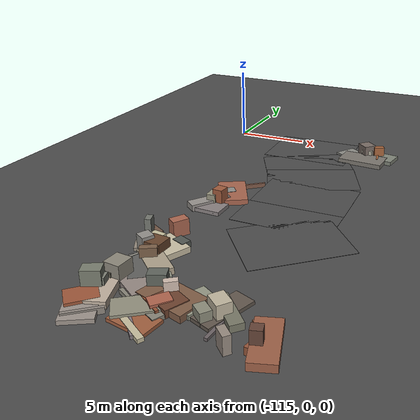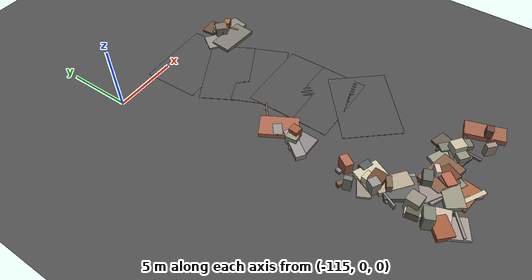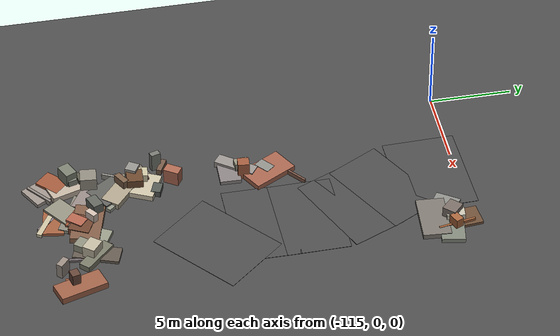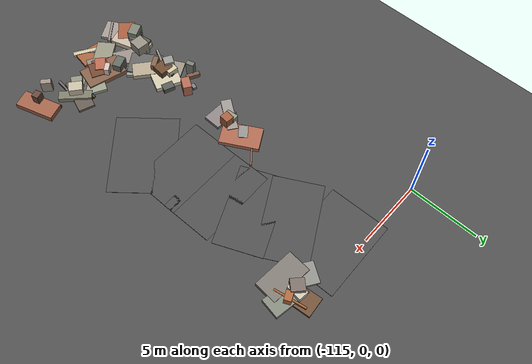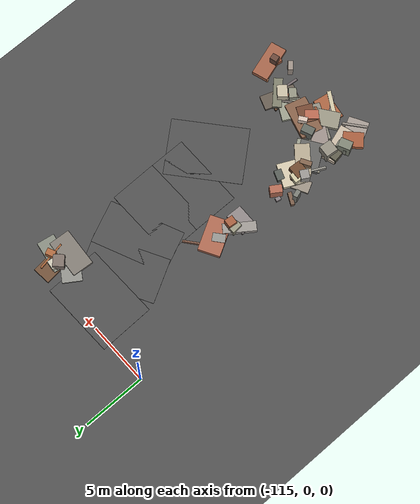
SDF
<sdf version="1.6">
 <world name="navitas_arena">
  <model name="ground_plane">
   <static>true</static>
   <link name="link">
    <collision name="collision">
     <geometry><plane><normal>0 0 1</normal><size>400 400</size></plane></geometry>
     <surface><friction><ode><mu>0.800</mu><mu2>0.800</mu2></ode></friction></surface>
    </collision>
    <visual name="visual">
     <cast_shadows>false</cast_shadows>
     <geometry><plane><normal>0 0 1</normal><size>400 400</size></plane></geometry>
     <material>
      <specular>0.04 0.04 0.04 1</specular>
      <script>
       <uri>file://media/materials/scripts/navitas_asphalt.material</uri>
       <name>Navitas/RealArenaAsphalt</name>
      </script>
     </material>
    </visual>
   </link>
  </model>
  <model name="road_kolay_1_5">
   <static>true</static>
   <pose>-104.956 -15.129 0.040 0 0 2.279</pose>
   <link name="link">
    <collision name="col"><geometry><box><size>4.502 6.000 0.020</size></box></geometry></collision>
    <visual name="vis">
     <geometry><box><size>4.502 6.000 0.020</size></box></geometry>
     <material>
      <specular>0.04 0.04 0.04 1</specular>
      <script>
       <uri>file://media/materials/scripts/navitas_asphalt.material</uri>
       <name>Navitas/RealArenaAsphalt</name>
      </script>
     </material>
    </visual>
   </link>
  </model>
  <model name="road_kolay_1_6">
   <static>true</static>
   <pose>-106.126 -12.340 0.040 0 0 1.570</pose>
   <link name="link">
    <collision name="col"><geometry><box><size>3.740 6.000 0.020</size></box></geometry></collision>
    <visual name="vis">
     <geometry><box><size>3.740 6.000 0.020</size></box></geometry>
     <material>
      <specular>0.04 0.04 0.04 1</specular>
      <script>
       <uri>file://media/materials/scripts/navitas_asphalt.material</uri>
       <name>Navitas/RealArenaAsphalt</name>
      </script>
     </material>
    </visual>
   </link>
  </model>
  <model name="road_kolay_1_7">
   <static>true</static>
   <pose>-106.145 -9.460 0.040 0 0 1.585</pose>
   <link name="link">
    <collision name="col"><geometry><box><size>3.820 6.000 0.020</size></box></geometry></collision>
    <visual name="vis">
     <geometry><box><size>3.820 6.000 0.020</size></box></geometry>
     <material>
      <specular>0.04 0.04 0.04 1</specular>
      <script>
       <uri>file://media/materials/scripts/navitas_asphalt.material</uri>
       <name>Navitas/RealArenaAsphalt</name>
      </script>
     </material>
    </visual>
   </link>
  </model>
  <model name="road_kolay_1_8">
   <static>true</static>
   <pose>-106.685 -6.833 0.040 0 0 1.989</pose>
   <link name="link">
    <collision name="col"><geometry><box><size>3.454 6.000 0.020</size></box></geometry></collision>
    <visual name="vis">
     <geometry><box><size>3.454 6.000 0.020</size></box></geometry>
     <material>
      <specular>0.04 0.04 0.04 1</specular>
      <script>
       <uri>file://media/materials/scripts/navitas_asphalt.material</uri>
       <name>Navitas/RealArenaAsphalt</name>
      </script>
     </material>
    </visual>
   </link>
  </model>
  <model name="road_kolay_1_9">
   <static>true</static>
   <pose>-107.845 -4.500 0.040 0 0 2.073</pose>
   <link name="link">
    <collision name="col"><geometry><box><size>3.562 6.000 0.020</size></box></geometry></collision>
    <visual name="vis">
     <geometry><box><size>3.562 6.000 0.020</size></box></geometry>
     <material>
      <specular>0.04 0.04 0.04 1</specular>
      <script>
       <uri>file://media/materials/scripts/navitas_asphalt.material</uri>
       <name>Navitas/RealArenaAsphalt</name>
      </script>
     </material>
    </visual>
   </link>
  </model>
  <model name="road_kolay_1_10">
   <static>true</static>
   <pose>-108.529 -1.583 0.040 0 0 1.596</pose>
   <link name="link">
    <collision name="col"><geometry><box><size>4.401 6.000 0.020</size></box></geometry></collision>
    <visual name="vis">
     <geometry><box><size>4.401 6.000 0.020</size></box></geometry>
     <material>
      <specular>0.04 0.04 0.04 1</specular>
      <script>
       <uri>file://media/materials/scripts/navitas_asphalt.material</uri>
       <name>Navitas/RealArenaAsphalt</name>
      </script>
     </material>
    </visual>
   </link>
  </model>
  <model name="deb_kolay_6">
   <static>true</static>
   <pose>-104.114 -1.815 0.000 0 0 0</pose>
   <link name="link">
    <collision name="col_0">
     <pose>-0.366 0.646 0.476 0.000 0.000 2.383</pose>
     <geometry><box><size>0.928 0.856 0.952</size></box></geometry>
    </collision>
    <visual name="vis_0">
     <pose>-0.366 0.646 0.476 0.000 0.000 2.383</pose>
     <geometry><box><size>0.928 0.856 0.952</size></box></geometry>
     <material>
      <ambient>0.45 0.40 0.37 1</ambient>
      <diffuse>0.48 0.43 0.40 1</diffuse>
      <specular>0.05 0.05 0.045 1</specular>
     </material>
    </visual>
    <collision name="col_1">
     <pose>0.163 0.191 0.134 0.000 0.000 2.814</pose>
     <geometry><box><size>0.394 0.396 0.268</size></box></geometry>
    </collision>
    <visual name="vis_1">
     <pose>0.163 0.191 0.134 0.000 0.000 2.814</pose>
     <geometry><box><size>0.394 0.396 0.268</size></box></geometry>
     <material>
      <ambient>0.45 0.35 0.24 1</ambient>
      <diffuse>0.49 0.38 0.26 1</diffuse>
      <specular>0.05 0.05 0.045 1</specular>
     </material>
    </visual>
    <collision name="col_2">
     <pose>0.502 0.676 0.436 0.000 0.000 3.576</pose>
     <geometry><box><size>0.691 0.494 0.872</size></box></geometry>
    </collision>
    <visual name="vis_2">
     <pose>0.502 0.676 0.436 0.000 0.000 3.576</pose>
     <geometry><box><size>0.691 0.494 0.872</size></box></geometry>
     <material>
      <ambient>0.61 0.37 0.22 1</ambient>
      <diffuse>0.66 0.40 0.24 1</diffuse>
      <specular>0.05 0.05 0.045 1</specular>
     </material>
    </visual>
    <collision name="col_3">
     <pose>-0.574 0.634 0.079 0.000 0.000 2.661</pose>
     <geometry><box><size>0.446 0.386 0.158</size></box></geometry>
    </collision>
    <visual name="vis_3">
     <pose>-0.574 0.634 0.079 0.000 0.000 2.661</pose>
     <geometry><box><size>0.446 0.386 0.158</size></box></geometry>
     <material>
      <ambient>0.44 0.31 0.23 1</ambient>
      <diffuse>0.47 0.33 0.24 1</diffuse>
      <specular>0.05 0.05 0.045 1</specular>
     </material>
    </visual>
   </link>
  </model>
  <model name="deb_kolay_7">
   <static>true</static>
   <pose>-104.295 -1.495 0.000 0 0 0</pose>
   <link name="link">
    <collision name="col_0">
     <pose>-0.162 -0.817 0.157 0.000 0.000 -0.072</pose>
     <geometry><box><size>3.071 1.691 0.314</size></box></geometry>
    </collision>
    <visual name="vis_0">
     <pose>-0.162 -0.817 0.157 0.000 0.000 -0.072</pose>
     <geometry><box><size>3.071 1.691 0.314</size></box></geometry>
     <material>
      <ambient>0.46 0.44 0.40 1</ambient>
      <diffuse>0.49 0.47 0.44 1</diffuse>
      <specular>0.05 0.05 0.045 1</specular>
     </material>
    </visual>
    <collision name="col_1">
     <pose>-0.041 0.465 0.314 0.000 0.000 1.462</pose>
     <geometry><box><size>1.101 0.726 0.627</size></box></geometry>
    </collision>
    <visual name="vis_1">
     <pose>-0.041 0.465 0.314 0.000 0.000 1.462</pose>
     <geometry><box><size>1.101 0.726 0.627</size></box></geometry>
     <material>
      <ambient>0.72 0.71 0.64 1</ambient>
      <diffuse>0.78 0.76 0.69 1</diffuse>
      <specular>0.05 0.05 0.045 1</specular>
     </material>
    </visual>
    <collision name="col_2">
     <pose>-0.231 0.709 0.146 0.000 0.000 0.795</pose>
     <geometry><box><size>0.396 0.385 0.291</size></box></geometry>
    </collision>
    <visual name="vis_2">
     <pose>-0.231 0.709 0.146 0.000 0.000 0.795</pose>
     <geometry><box><size>0.396 0.385 0.291</size></box></geometry>
     <material>
      <ambient>0.40 0.26 0.19 1</ambient>
      <diffuse>0.43 0.28 0.21 1</diffuse>
      <specular>0.05 0.05 0.045 1</specular>
     </material>
    </visual>
    <collision name="col_3">
     <pose>-0.874 -0.166 0.094 0.000 0.000 -0.587</pose>
     <geometry><box><size>2.462 1.514 0.188</size></box></geometry>
    </collision>
    <visual name="vis_3">
     <pose>-0.874 -0.166 0.094 0.000 0.000 -0.587</pose>
     <geometry><box><size>2.462 1.514 0.188</size></box></geometry>
     <material>
      <ambient>0.51 0.51 0.49 1</ambient>
      <diffuse>0.55 0.55 0.53 1</diffuse>
      <specular>0.05 0.05 0.045 1</specular>
     </material>
    </visual>
    <collision name="col_4">
     <pose>0.649 0.125 0.139 0.000 0.000 -0.169</pose>
     <geometry><box><size>2.597 1.405 0.277</size></box></geometry>
    </collision>
    <visual name="vis_4">
     <pose>0.649 0.125 0.139 0.000 0.000 -0.169</pose>
     <geometry><box><size>2.597 1.405 0.277</size></box></geometry>
     <material>
      <ambient>0.47 0.49 0.44 1</ambient>
      <diffuse>0.51 0.53 0.48 1</diffuse>
      <specular>0.05 0.05 0.045 1</specular>
     </material>
    </visual>
    <collision name="col_5">
     <pose>0.611 0.432 0.167 0.000 0.000 1.753</pose>
     <geometry><box><size>2.290 0.137 0.333</size></box></geometry>
    </collision>
    <visual name="vis_5">
     <pose>0.611 0.432 0.167 0.000 0.000 1.753</pose>
     <geometry><box><size>2.290 0.137 0.333</size></box></geometry>
     <material>
      <ambient>0.58 0.35 0.21 1</ambient>
      <diffuse>0.63 0.38 0.22 1</diffuse>
      <specular>0.05 0.05 0.045 1</specular>
     </material>
    </visual>
    <collision name="col_6">
     <pose>0.080 0.646 0.085 0.000 0.000 1.666</pose>
     <geometry><box><size>2.610 1.439 0.171</size></box></geometry>
    </collision>
    <visual name="vis_6">
     <pose>0.080 0.646 0.085 0.000 0.000 1.666</pose>
     <geometry><box><size>2.610 1.439 0.171</size></box></geometry>
     <material>
      <ambient>0.40 0.29 0.21 1</ambient>
      <diffuse>0.43 0.31 0.22 1</diffuse>
      <specular>0.05 0.05 0.045 1</specular>
     </material>
    </visual>
   </link>
  </model>
  <model name="deb_kolay_13">
   <static>true</static>
   <pose>-108.698 -22.601 0.000 0 0 0</pose>
   <link name="link">
    <collision name="col_0">
     <pose>0.086 -0.724 0.163 0.000 0.000 0.630</pose>
     <geometry><box><size>2.988 1.344 0.325</size></box></geometry>
    </collision>
    <visual name="vis_0">
     <pose>0.086 -0.724 0.163 0.000 0.000 0.630</pose>
     <geometry><box><size>2.988 1.344 0.325</size></box></geometry>
     <material>
      <ambient>0.54 0.53 0.47 1</ambient>
      <diffuse>0.58 0.57 0.50 1</diffuse>
      <specular>0.05 0.05 0.045 1</specular>
     </material>
    </visual>
    <collision name="col_1">
     <pose>-0.220 0.833 0.481 0.000 0.000 0.382</pose>
     <geometry><box><size>0.945 0.642 0.962</size></box></geometry>
    </collision>
    <visual name="vis_1">
     <pose>-0.220 0.833 0.481 0.000 0.000 0.382</pose>
     <geometry><box><size>0.945 0.642 0.962</size></box></geometry>
     <material>
      <ambient>0.35 0.37 0.34 1</ambient>
      <diffuse>0.38 0.40 0.37 1</diffuse>
      <specular>0.05 0.05 0.045 1</specular>
     </material>
    </visual>
    <collision name="col_2">
     <pose>0.636 -0.362 0.240 0.000 0.000 0.856</pose>
     <geometry><box><size>1.071 0.747 0.480</size></box></geometry>
    </collision>
    <visual name="vis_2">
     <pose>0.636 -0.362 0.240 0.000 0.000 0.856</pose>
     <geometry><box><size>1.071 0.747 0.480</size></box></geometry>
     <material>
      <ambient>0.65 0.37 0.29 1</ambient>
      <diffuse>0.70 0.40 0.31 1</diffuse>
      <specular>0.05 0.05 0.045 1</specular>
     </material>
    </visual>
    <collision name="col_3">
     <pose>0.677 0.528 0.462 0.000 0.000 0.632</pose>
     <geometry><box><size>0.689 0.361 0.923</size></box></geometry>
    </collision>
    <visual name="vis_3">
     <pose>0.677 0.528 0.462 0.000 0.000 0.632</pose>
     <geometry><box><size>0.689 0.361 0.923</size></box></geometry>
     <material>
      <ambient>0.76 0.69 0.64 1</ambient>
      <diffuse>0.82 0.74 0.69 1</diffuse>
      <specular>0.05 0.05 0.045 1</specular>
     </material>
    </visual>
    <collision name="col_4">
     <pose>0.324 -0.351 0.169 0.000 0.000 1.983</pose>
     <geometry><box><size>0.403 0.341 0.338</size></box></geometry>
    </collision>
    <visual name="vis_4">
     <pose>0.324 -0.351 0.169 0.000 0.000 1.983</pose>
     <geometry><box><size>0.403 0.341 0.338</size></box></geometry>
     <material>
      <ambient>0.40 0.24 0.20 1</ambient>
      <diffuse>0.43 0.26 0.21 1</diffuse>
      <specular>0.05 0.05 0.045 1</specular>
     </material>
    </visual>
    <collision name="col_5">
     <pose>-0.785 0.219 0.142 0.000 0.000 1.299</pose>
     <geometry><box><size>0.363 0.346 0.283</size></box></geometry>
    </collision>
    <visual name="vis_5">
     <pose>-0.785 0.219 0.142 0.000 0.000 1.299</pose>
     <geometry><box><size>0.363 0.346 0.283</size></box></geometry>
     <material>
      <ambient>0.60 0.34 0.22 1</ambient>
      <diffuse>0.65 0.37 0.24 1</diffuse>
      <specular>0.05 0.05 0.045 1</specular>
     </material>
    </visual>
   </link>
  </model>
  <model name="deb_kolay_37">
   <static>true</static>
   <pose>-108.775 -23.784 0.000 0 0 0</pose>
   <link name="link">
    <collision name="col_0">
     <pose>0.159 -0.707 0.096 0.000 0.000 2.370</pose>
     <geometry><box><size>2.111 0.297 0.191</size></box></geometry>
    </collision>
    <visual name="vis_0">
     <pose>0.159 -0.707 0.096 0.000 0.000 2.370</pose>
     <geometry><box><size>2.111 0.297 0.191</size></box></geometry>
     <material>
      <ambient>0.49 0.44 0.46 1</ambient>
      <diffuse>0.53 0.48 0.50 1</diffuse>
      <specular>0.05 0.05 0.045 1</specular>
     </material>
    </visual>
    <collision name="col_1">
     <pose>-0.088 0.690 0.114 0.000 0.000 2.689</pose>
     <geometry><box><size>3.035 0.825 0.228</size></box></geometry>
    </collision>
    <visual name="vis_1">
     <pose>-0.088 0.690 0.114 0.000 0.000 2.689</pose>
     <geometry><box><size>3.035 0.825 0.228</size></box></geometry>
     <material>
      <ambient>0.50 0.49 0.45 1</ambient>
      <diffuse>0.54 0.53 0.48 1</diffuse>
      <specular>0.05 0.05 0.045 1</specular>
     </material>
    </visual>
    <collision name="col_2">
     <pose>0.564 -1.070 0.104 0.000 0.000 2.611</pose>
     <geometry><box><size>1.753 0.318 0.207</size></box></geometry>
    </collision>
    <visual name="vis_2">
     <pose>0.564 -1.070 0.104 0.000 0.000 2.611</pose>
     <geometry><box><size>1.753 0.318 0.207</size></box></geometry>
     <material>
      <ambient>0.73 0.69 0.58 1</ambient>
      <diffuse>0.79 0.75 0.63 1</diffuse>
      <specular>0.05 0.05 0.045 1</specular>
     </material>
    </visual>
    <collision name="col_3">
     <pose>0.404 0.517 0.176 0.000 0.000 2.612</pose>
     <geometry><box><size>1.393 0.173 0.351</size></box></geometry>
    </collision>
    <visual name="vis_3">
     <pose>0.404 0.517 0.176 0.000 0.000 2.612</pose>
     <geometry><box><size>1.393 0.173 0.351</size></box></geometry>
     <material>
      <ambient>0.55 0.31 0.19 1</ambient>
      <diffuse>0.59 0.33 0.21 1</diffuse>
      <specular>0.05 0.05 0.045 1</specular>
     </material>
    </visual>
    <collision name="col_4">
     <pose>0.300 -0.511 0.089 0.000 0.000 2.977</pose>
     <geometry><box><size>2.151 1.284 0.179</size></box></geometry>
    </collision>
    <visual name="vis_4">
     <pose>0.300 -0.511 0.089 0.000 0.000 2.977</pose>
     <geometry><box><size>2.151 1.284 0.179</size></box></geometry>
     <material>
      <ambient>0.59 0.35 0.24 1</ambient>
      <diffuse>0.64 0.38 0.25 1</diffuse>
      <specular>0.05 0.05 0.045 1</specular>
     </material>
    </visual>
   </link>
  </model>
  <model name="deb_kolay_74">
   <static>true</static>
   <pose>-105.830 -22.360 0.000 0 0 0</pose>
   <link name="link">
    <collision name="col_0">
     <pose>-0.238 0.664 0.093 0.000 0.000 0.663</pose>
     <geometry><box><size>2.375 0.278 0.185</size></box></geometry>
    </collision>
    <visual name="vis_0">
     <pose>-0.238 0.664 0.093 0.000 0.000 0.663</pose>
     <geometry><box><size>2.375 0.278 0.185</size></box></geometry>
     <material>
      <ambient>0.34 0.33 0.31 1</ambient>
      <diffuse>0.37 0.36 0.33 1</diffuse>
      <specular>0.05 0.05 0.045 1</specular>
     </material>
    </visual>
    <collision name="col_1">
     <pose>0.500 0.206 0.096 0.000 0.000 1.226</pose>
     <geometry><box><size>2.761 1.187 0.191</size></box></geometry>
    </collision>
    <visual name="vis_1">
     <pose>0.500 0.206 0.096 0.000 0.000 1.226</pose>
     <geometry><box><size>2.761 1.187 0.191</size></box></geometry>
     <material>
      <ambient>0.36 0.33 0.29 1</ambient>
      <diffuse>0.39 0.35 0.31 1</diffuse>
      <specular>0.05 0.05 0.045 1</specular>
     </material>
    </visual>
    <collision name="col_2">
     <pose>-0.215 0.018 0.146 0.000 0.000 0.668</pose>
     <geometry><box><size>1.291 0.213 0.293</size></box></geometry>
    </collision>
    <visual name="vis_2">
     <pose>-0.215 0.018 0.146 0.000 0.000 0.668</pose>
     <geometry><box><size>1.291 0.213 0.293</size></box></geometry>
     <material>
      <ambient>0.35 0.32 0.31 1</ambient>
      <diffuse>0.38 0.35 0.33 1</diffuse>
      <specular>0.05 0.05 0.045 1</specular>
     </material>
    </visual>
    <collision name="col_3">
     <pose>-0.028 -0.498 0.172 0.000 0.000 1.151</pose>
     <geometry><box><size>0.456 0.427 0.344</size></box></geometry>
    </collision>
    <visual name="vis_3">
     <pose>-0.028 -0.498 0.172 0.000 0.000 1.151</pose>
     <geometry><box><size>0.456 0.427 0.344</size></box></geometry>
     <material>
      <ambient>0.66 0.40 0.30 1</ambient>
      <diffuse>0.71 0.43 0.32 1</diffuse>
      <specular>0.05 0.05 0.045 1</specular>
     </material>
    </visual>
    <collision name="col_4">
     <pose>0.424 0.266 0.136 0.000 0.000 -0.114</pose>
     <geometry><box><size>0.494 0.264 0.272</size></box></geometry>
    </collision>
    <visual name="vis_4">
     <pose>0.424 0.266 0.136 0.000 0.000 -0.114</pose>
     <geometry><box><size>0.494 0.264 0.272</size></box></geometry>
     <material>
      <ambient>0.56 0.54 0.51 1</ambient>
      <diffuse>0.61 0.59 0.55 1</diffuse>
      <specular>0.05 0.05 0.045 1</specular>
     </material>
    </visual>
    <collision name="col_5">
     <pose>-0.046 0.381 0.085 0.000 0.000 1.602</pose>
     <geometry><box><size>1.546 0.174 0.170</size></box></geometry>
    </collision>
    <visual name="vis_5">
     <pose>-0.046 0.381 0.085 0.000 0.000 1.602</pose>
     <geometry><box><size>1.546 0.174 0.170</size></box></geometry>
     <material>
      <ambient>0.39 0.28 0.20 1</ambient>
      <diffuse>0.42 0.30 0.21 1</diffuse>
      <specular>0.05 0.05 0.045 1</specular>
     </material>
    </visual>
    <collision name="col_6">
     <pose>-0.040 -0.643 0.340 0.000 0.000 0.912</pose>
     <geometry><box><size>0.597 0.799 0.679</size></box></geometry>
    </collision>
    <visual name="vis_6">
     <pose>-0.040 -0.643 0.340 0.000 0.000 0.912</pose>
     <geometry><box><size>0.597 0.799 0.679</size></box></geometry>
     <material>
      <ambient>0.52 0.51 0.45 1</ambient>
      <diffuse>0.56 0.56 0.49 1</diffuse>
      <specular>0.05 0.05 0.045 1</specular>
     </material>
    </visual>
   </link>
  </model>
  <model name="deb_kolay_88">
   <static>true</static>
   <pose>-110.507 -13.376 0.000 0 0 0</pose>
   <link name="link">
    <collision name="col_0">
     <pose>-0.468 -0.263 0.062 0.000 0.000 -0.376</pose>
     <geometry><box><size>1.690 0.262 0.124</size></box></geometry>
    </collision>
    <visual name="vis_0">
     <pose>-0.468 -0.263 0.062 0.000 0.000 -0.376</pose>
     <geometry><box><size>1.690 0.262 0.124</size></box></geometry>
     <material>
      <ambient>0.52 0.54 0.45 1</ambient>
      <diffuse>0.56 0.58 0.49 1</diffuse>
      <specular>0.05 0.05 0.045 1</specular>
     </material>
    </visual>
    <collision name="col_1">
     <pose>-0.481 0.760 0.373 0.000 0.000 1.662</pose>
     <geometry><box><size>0.854 0.548 0.746</size></box></geometry>
    </collision>
    <visual name="vis_1">
     <pose>-0.481 0.760 0.373 0.000 0.000 1.662</pose>
     <geometry><box><size>0.854 0.548 0.746</size></box></geometry>
     <material>
      <ambient>0.55 0.54 0.47 1</ambient>
      <diffuse>0.59 0.58 0.50 1</diffuse>
      <specular>0.05 0.05 0.045 1</specular>
     </material>
    </visual>
    <collision name="col_2">
     <pose>-0.043 0.814 0.538 0.000 0.000 -0.100</pose>
     <geometry><box><size>0.645 0.692 1.076</size></box></geometry>
    </collision>
    <visual name="vis_2">
     <pose>-0.043 0.814 0.538 0.000 0.000 -0.100</pose>
     <geometry><box><size>0.645 0.692 1.076</size></box></geometry>
     <material>
      <ambient>0.59 0.34 0.22 1</ambient>
      <diffuse>0.63 0.36 0.24 1</diffuse>
      <specular>0.05 0.05 0.045 1</specular>
     </material>
    </visual>
    <collision name="col_3">
     <pose>-0.649 0.474 0.199 0.000 0.000 0.944</pose>
     <geometry><box><size>2.539 0.766 0.397</size></box></geometry>
    </collision>
    <visual name="vis_3">
     <pose>-0.649 0.474 0.199 0.000 0.000 0.944</pose>
     <geometry><box><size>2.539 0.766 0.397</size></box></geometry>
     <material>
      <ambient>0.56 0.54 0.52 1</ambient>
      <diffuse>0.60 0.58 0.56 1</diffuse>
      <specular>0.05 0.05 0.045 1</specular>
     </material>
    </visual>
    <collision name="col_4">
     <pose>-0.283 -0.031 0.120 0.000 0.000 -0.026</pose>
     <geometry><box><size>1.808 1.284 0.240</size></box></geometry>
    </collision>
    <visual name="vis_4">
     <pose>-0.283 -0.031 0.120 0.000 0.000 -0.026</pose>
     <geometry><box><size>1.808 1.284 0.240</size></box></geometry>
     <material>
      <ambient>0.50 0.47 0.48 1</ambient>
      <diffuse>0.54 0.51 0.51 1</diffuse>
      <specular>0.05 0.05 0.045 1</specular>
     </material>
    </visual>
   </link>
  </model>
  <model name="deb_kolay_93">
   <static>true</static>
   <pose>-110.550 -21.634 0.000 0 0 0</pose>
   <link name="link">
    <collision name="col_0">
     <pose>0.704 -0.765 0.080 0.000 0.000 2.467</pose>
     <geometry><box><size>2.007 0.272 0.159</size></box></geometry>
    </collision>
    <visual name="vis_0">
     <pose>0.704 -0.765 0.080 0.000 0.000 2.467</pose>
     <geometry><box><size>2.007 0.272 0.159</size></box></geometry>
     <material>
      <ambient>0.61 0.61 0.57 1</ambient>
      <diffuse>0.66 0.66 0.62 1</diffuse>
      <specular>0.05 0.05 0.045 1</specular>
     </material>
    </visual>
    <collision name="col_1">
     <pose>-0.714 -0.006 0.134 0.000 0.000 3.982</pose>
     <geometry><box><size>0.199 0.317 0.267</size></box></geometry>
    </collision>
    <visual name="vis_1">
     <pose>-0.714 -0.006 0.134 0.000 0.000 3.982</pose>
     <geometry><box><size>0.199 0.317 0.267</size></box></geometry>
     <material>
      <ambient>0.63 0.60 0.55 1</ambient>
      <diffuse>0.68 0.65 0.59 1</diffuse>
      <specular>0.05 0.05 0.045 1</specular>
     </material>
    </visual>
    <collision name="col_2">
     <pose>0.617 -0.433 0.167 0.000 0.000 2.589</pose>
     <geometry><box><size>1.960 1.280 0.334</size></box></geometry>
    </collision>
    <visual name="vis_2">
     <pose>0.617 -0.433 0.167 0.000 0.000 2.589</pose>
     <geometry><box><size>1.960 1.280 0.334</size></box></geometry>
     <material>
      <ambient>0.55 0.50 0.48 1</ambient>
      <diffuse>0.59 0.54 0.52 1</diffuse>
      <specular>0.05 0.05 0.045 1</specular>
     </material>
    </visual>
    <collision name="col_3">
     <pose>-0.533 -0.209 0.563 0.000 0.000 3.046</pose>
     <geometry><box><size>0.951 0.983 1.126</size></box></geometry>
    </collision>
    <visual name="vis_3">
     <pose>-0.533 -0.209 0.563 0.000 0.000 3.046</pose>
     <geometry><box><size>0.951 0.983 1.126</size></box></geometry>
     <material>
      <ambient>0.52 0.50 0.46 1</ambient>
      <diffuse>0.56 0.54 0.49 1</diffuse>
      <specular>0.05 0.05 0.045 1</specular>
     </material>
    </visual>
    <collision name="col_4">
     <pose>-1.055 -0.402 0.314 0.000 0.000 3.304</pose>
     <geometry><box><size>0.785 0.841 0.628</size></box></geometry>
    </collision>
    <visual name="vis_4">
     <pose>-1.055 -0.402 0.314 0.000 0.000 3.304</pose>
     <geometry><box><size>0.785 0.841 0.628</size></box></geometry>
     <material>
      <ambient>0.33 0.32 0.27 1</ambient>
      <diffuse>0.36 0.35 0.29 1</diffuse>
      <specular>0.05 0.05 0.045 1</specular>
     </material>
    </visual>
   </link>
  </model>
  <model name="deb_kolay_121">
   <static>true</static>
   <pose>-105.128 -22.398 0.000 0 0 0</pose>
   <link name="link">
    <collision name="col_0">
     <pose>0.141 -0.663 0.076 0.000 0.000 1.472</pose>
     <geometry><box><size>2.201 0.181 0.152</size></box></geometry>
    </collision>
    <visual name="vis_0">
     <pose>0.141 -0.663 0.076 0.000 0.000 1.472</pose>
     <geometry><box><size>2.201 0.181 0.152</size></box></geometry>
     <material>
      <ambient>0.40 0.36 0.37 1</ambient>
      <diffuse>0.43 0.39 0.40 1</diffuse>
      <specular>0.05 0.05 0.045 1</specular>
     </material>
    </visual>
    <collision name="col_1">
     <pose>-0.710 -0.121 0.160 0.000 0.000 0.522</pose>
     <geometry><box><size>0.221 0.353 0.320</size></box></geometry>
    </collision>
    <visual name="vis_1">
     <pose>-0.710 -0.121 0.160 0.000 0.000 0.522</pose>
     <geometry><box><size>0.221 0.353 0.320</size></box></geometry>
     <material>
      <ambient>0.56 0.54 0.49 1</ambient>
      <diffuse>0.60 0.58 0.53 1</diffuse>
      <specular>0.05 0.05 0.045 1</specular>
     </material>
    </visual>
    <collision name="col_2">
     <pose>-0.186 -0.031 0.469 0.000 0.000 0.897</pose>
     <geometry><box><size>0.789 0.979 0.938</size></box></geometry>
    </collision>
    <visual name="vis_2">
     <pose>-0.186 -0.031 0.469 0.000 0.000 0.897</pose>
     <geometry><box><size>0.789 0.979 0.938</size></box></geometry>
     <material>
      <ambient>0.71 0.67 0.58 1</ambient>
      <diffuse>0.76 0.72 0.63 1</diffuse>
      <specular>0.05 0.05 0.045 1</specular>
     </material>
    </visual>
    <collision name="col_3">
     <pose>0.110 0.149 0.186 0.000 0.000 2.357</pose>
     <geometry><box><size>2.377 0.699 0.372</size></box></geometry>
    </collision>
    <visual name="vis_3">
     <pose>0.110 0.149 0.186 0.000 0.000 2.357</pose>
     <geometry><box><size>2.377 0.699 0.372</size></box></geometry>
     <material>
      <ambient>0.44 0.44 0.38 1</ambient>
      <diffuse>0.48 0.48 0.41 1</diffuse>
      <specular>0.05 0.05 0.045 1</specular>
     </material>
    </visual>
   </link>
  </model>
  <model name="deb_kolay_134">
   <static>true</static>
   <pose>-110.647 -10.263 0.000 0 0 0</pose>
   <link name="link">
    <collision name="col_0">
     <pose>0.917 0.698 0.139 0.000 0.000 0.684</pose>
     <geometry><box><size>1.540 0.133 0.278</size></box></geometry>
    </collision>
    <visual name="vis_0">
     <pose>0.917 0.698 0.139 0.000 0.000 0.684</pose>
     <geometry><box><size>1.540 0.133 0.278</size></box></geometry>
     <material>
      <ambient>0.46 0.33 0.26 1</ambient>
      <diffuse>0.50 0.35 0.28 1</diffuse>
      <specular>0.05 0.05 0.045 1</specular>
     </material>
    </visual>
    <collision name="col_1">
     <pose>0.133 -0.838 0.148 0.000 0.000 1.729</pose>
     <geometry><box><size>2.313 0.184 0.296</size></box></geometry>
    </collision>
    <visual name="vis_1">
     <pose>0.133 -0.838 0.148 0.000 0.000 1.729</pose>
     <geometry><box><size>2.313 0.184 0.296</size></box></geometry>
     <material>
      <ambient>0.73 0.67 0.59 1</ambient>
      <diffuse>0.79 0.72 0.64 1</diffuse>
      <specular>0.05 0.05 0.045 1</specular>
     </material>
    </visual>
    <collision name="col_2">
     <pose>0.203 -0.867 0.167 0.000 0.000 2.082</pose>
     <geometry><box><size>2.846 1.742 0.335</size></box></geometry>
    </collision>
    <visual name="vis_2">
     <pose>0.203 -0.867 0.167 0.000 0.000 2.082</pose>
     <geometry><box><size>2.846 1.742 0.335</size></box></geometry>
     <material>
      <ambient>0.61 0.37 0.28 1</ambient>
      <diffuse>0.66 0.40 0.31 1</diffuse>
      <specular>0.05 0.05 0.045 1</specular>
     </material>
    </visual>
    <collision name="col_3">
     <pose>-0.113 -0.963 0.178 0.000 0.000 0.689</pose>
     <geometry><box><size>0.998 0.668 0.355</size></box></geometry>
    </collision>
    <visual name="vis_3">
     <pose>-0.113 -0.963 0.178 0.000 0.000 0.689</pose>
     <geometry><box><size>0.998 0.668 0.355</size></box></geometry>
     <material>
      <ambient>0.52 0.51 0.50 1</ambient>
      <diffuse>0.56 0.56 0.54 1</diffuse>
      <specular>0.05 0.05 0.045 1</specular>
     </material>
    </visual>
   </link>
  </model>
  <model name="deb_kolay_142">
   <static>true</static>
   <pose>-110.854 -18.076 0.000 0 0 0</pose>
   <link name="link">
    <collision name="col_0">
     <pose>0.819 0.195 0.187 0.000 0.000 -0.367</pose>
     <geometry><box><size>0.829 0.567 0.373</size></box></geometry>
    </collision>
    <visual name="vis_0">
     <pose>0.819 0.195 0.187 0.000 0.000 -0.367</pose>
     <geometry><box><size>0.829 0.567 0.373</size></box></geometry>
     <material>
      <ambient>0.30 0.32 0.31 1</ambient>
      <diffuse>0.33 0.35 0.33 1</diffuse>
      <specular>0.05 0.05 0.045 1</specular>
     </material>
    </visual>
    <collision name="col_1">
     <pose>-0.112 -0.564 0.156 0.000 0.000 1.294</pose>
     <geometry><box><size>0.331 0.216 0.312</size></box></geometry>
    </collision>
    <visual name="vis_1">
     <pose>-0.112 -0.564 0.156 0.000 0.000 1.294</pose>
     <geometry><box><size>0.331 0.216 0.312</size></box></geometry>
     <material>
      <ambient>0.40 0.38 0.36 1</ambient>
      <diffuse>0.43 0.41 0.39 1</diffuse>
      <specular>0.05 0.05 0.045 1</specular>
     </material>
    </visual>
    <collision name="col_2">
     <pose>-0.245 -0.626 0.419 0.000 0.000 -0.130</pose>
     <geometry><box><size>0.760 0.856 0.838</size></box></geometry>
    </collision>
    <visual name="vis_2">
     <pose>-0.245 -0.626 0.419 0.000 0.000 -0.130</pose>
     <geometry><box><size>0.760 0.856 0.838</size></box></geometry>
     <material>
      <ambient>0.73 0.70 0.58 1</ambient>
      <diffuse>0.79 0.76 0.63 1</diffuse>
      <specular>0.05 0.05 0.045 1</specular>
     </material>
    </visual>
    <collision name="col_3">
     <pose>-0.601 -0.445 0.085 0.000 0.000 0.486</pose>
     <geometry><box><size>1.859 0.941 0.171</size></box></geometry>
    </collision>
    <visual name="vis_3">
     <pose>-0.601 -0.445 0.085 0.000 0.000 0.486</pose>
     <geometry><box><size>1.859 0.941 0.171</size></box></geometry>
     <material>
      <ambient>0.55 0.51 0.46 1</ambient>
      <diffuse>0.59 0.55 0.50 1</diffuse>
      <specular>0.05 0.05 0.045 1</specular>
     </material>
    </visual>
    <collision name="col_4">
     <pose>-0.159 -0.645 0.243 0.000 0.000 1.720</pose>
     <geometry><box><size>0.907 0.514 0.487</size></box></geometry>
    </collision>
    <visual name="vis_4">
     <pose>-0.159 -0.645 0.243 0.000 0.000 1.720</pose>
     <geometry><box><size>0.907 0.514 0.487</size></box></geometry>
     <material>
      <ambient>0.40 0.27 0.24 1</ambient>
      <diffuse>0.43 0.29 0.26 1</diffuse>
      <specular>0.05 0.05 0.045 1</specular>
     </material>
    </visual>
    <collision name="col_5">
     <pose>0.344 -0.531 0.172 0.000 0.000 -0.445</pose>
     <geometry><box><size>1.944 1.692 0.345</size></box></geometry>
    </collision>
    <visual name="vis_5">
     <pose>0.344 -0.531 0.172 0.000 0.000 -0.445</pose>
     <geometry><box><size>1.944 1.692 0.345</size></box></geometry>
     <material>
      <ambient>0.74 0.71 0.62 1</ambient>
      <diffuse>0.80 0.76 0.66 1</diffuse>
      <specular>0.05 0.05 0.045 1</specular>
     </material>
    </visual>
   </link>
  </model>
  <model name="deb_kolay_149">
   <static>true</static>
   <pose>-111.290 -17.185 0.000 0 0 0</pose>
   <link name="link">
    <collision name="col_0">
     <pose>-0.706 -0.113 0.171 0.000 0.000 -0.478</pose>
     <geometry><box><size>1.016 0.308 0.341</size></box></geometry>
    </collision>
    <visual name="vis_0">
     <pose>-0.706 -0.113 0.171 0.000 0.000 -0.478</pose>
     <geometry><box><size>1.016 0.308 0.341</size></box></geometry>
     <material>
      <ambient>0.43 0.32 0.25 1</ambient>
      <diffuse>0.46 0.35 0.28 1</diffuse>
      <specular>0.05 0.05 0.045 1</specular>
     </material>
    </visual>
    <collision name="col_1">
     <pose>-0.892 -0.466 0.585 0.000 0.000 1.878</pose>
     <geometry><box><size>0.589 0.359 1.171</size></box></geometry>
    </collision>
    <visual name="vis_1">
     <pose>-0.892 -0.466 0.585 0.000 0.000 1.878</pose>
     <geometry><box><size>0.589 0.359 1.171</size></box></geometry>
     <material>
      <ambient>0.42 0.43 0.41 1</ambient>
      <diffuse>0.46 0.47 0.44 1</diffuse>
      <specular>0.05 0.05 0.045 1</specular>
     </material>
    </visual>
    <collision name="col_2">
     <pose>0.446 0.394 0.478 0.000 0.000 0.988</pose>
     <geometry><box><size>0.946 0.622 0.957</size></box></geometry>
    </collision>
    <visual name="vis_2">
     <pose>0.446 0.394 0.478 0.000 0.000 0.988</pose>
     <geometry><box><size>0.946 0.622 0.957</size></box></geometry>
     <material>
      <ambient>0.63 0.38 0.29 1</ambient>
      <diffuse>0.68 0.41 0.32 1</diffuse>
      <specular>0.05 0.05 0.045 1</specular>
     </material>
    </visual>
    <collision name="col_3">
     <pose>-0.054 0.608 0.117 0.000 0.000 -0.262</pose>
     <geometry><box><size>0.287 0.403 0.234</size></box></geometry>
    </collision>
    <visual name="vis_3">
     <pose>-0.054 0.608 0.117 0.000 0.000 -0.262</pose>
     <geometry><box><size>0.287 0.403 0.234</size></box></geometry>
     <material>
      <ambient>0.46 0.43 0.44 1</ambient>
      <diffuse>0.50 0.47 0.48 1</diffuse>
      <specular>0.05 0.05 0.045 1</specular>
     </material>
    </visual>
   </link>
  </model>
  <model name="deb_kolay_150">
   <static>true</static>
   <pose>-103.566 -23.785 0.000 0 0 0</pose>
   <link name="link">
    <collision name="col_0">
     <pose>0.757 -0.243 0.203 0.000 0.000 1.395</pose>
     <geometry><box><size>0.653 0.888 0.406</size></box></geometry>
    </collision>
    <visual name="vis_0">
     <pose>0.757 -0.243 0.203 0.000 0.000 1.395</pose>
     <geometry><box><size>0.653 0.888 0.406</size></box></geometry>
     <material>
      <ambient>0.54 0.32 0.21 1</ambient>
      <diffuse>0.59 0.34 0.23 1</diffuse>
      <specular>0.05 0.05 0.045 1</specular>
     </material>
    </visual>
    <collision name="col_1">
     <pose>0.522 0.559 0.120 0.000 0.000 2.245</pose>
     <geometry><box><size>2.272 0.146 0.240</size></box></geometry>
    </collision>
    <visual name="vis_1">
     <pose>0.522 0.559 0.120 0.000 0.000 2.245</pose>
     <geometry><box><size>2.272 0.146 0.240</size></box></geometry>
     <material>
      <ambient>0.63 0.42 0.28 1</ambient>
      <diffuse>0.68 0.45 0.31 1</diffuse>
      <specular>0.05 0.05 0.045 1</specular>
     </material>
    </visual>
    <collision name="col_2">
     <pose>-0.594 -0.532 0.472 0.000 0.000 2.415</pose>
     <geometry><box><size>0.759 0.391 0.944</size></box></geometry>
    </collision>
    <visual name="vis_2">
     <pose>-0.594 -0.532 0.472 0.000 0.000 2.415</pose>
     <geometry><box><size>0.759 0.391 0.944</size></box></geometry>
     <material>
      <ambient>0.56 0.51 0.47 1</ambient>
      <diffuse>0.60 0.55 0.51 1</diffuse>
      <specular>0.05 0.05 0.045 1</specular>
     </material>
    </visual>
    <collision name="col_3">
     <pose>0.612 0.007 0.556 0.000 0.000 1.844</pose>
     <geometry><box><size>0.502 0.567 1.113</size></box></geometry>
    </collision>
    <visual name="vis_3">
     <pose>0.612 0.007 0.556 0.000 0.000 1.844</pose>
     <geometry><box><size>0.502 0.567 1.113</size></box></geometry>
     <material>
      <ambient>0.37 0.25 0.21 1</ambient>
      <diffuse>0.40 0.27 0.22 1</diffuse>
      <specular>0.05 0.05 0.045 1</specular>
     </material>
    </visual>
    <collision name="col_4">
     <pose>0.894 0.276 0.204 0.000 0.000 1.877</pose>
     <geometry><box><size>2.898 1.286 0.409</size></box></geometry>
    </collision>
    <visual name="vis_4">
     <pose>0.894 0.276 0.204 0.000 0.000 1.877</pose>
     <geometry><box><size>2.898 1.286 0.409</size></box></geometry>
     <material>
      <ambient>0.58 0.35 0.26 1</ambient>
      <diffuse>0.62 0.38 0.28 1</diffuse>
      <specular>0.05 0.05 0.045 1</specular>
     </material>
    </visual>
   </link>
  </model>
  <model name="deb_kolay_175">
   <static>true</static>
   <pose>-111.109 -19.804 0.000 0 0 0</pose>
   <link name="link">
    <collision name="col_0">
     <pose>0.138 0.130 0.072 0.000 0.000 0.721</pose>
     <geometry><box><size>2.133 0.219 0.145</size></box></geometry>
    </collision>
    <visual name="vis_0">
     <pose>0.138 0.130 0.072 0.000 0.000 0.721</pose>
     <geometry><box><size>2.133 0.219 0.145</size></box></geometry>
     <material>
      <ambient>0.53 0.51 0.46 1</ambient>
      <diffuse>0.57 0.55 0.49 1</diffuse>
      <specular>0.05 0.05 0.045 1</specular>
     </material>
    </visual>
    <collision name="col_1">
     <pose>0.310 0.703 0.428 0.000 0.000 -0.066</pose>
     <geometry><box><size>1.075 0.972 0.857</size></box></geometry>
    </collision>
    <visual name="vis_1">
     <pose>0.310 0.703 0.428 0.000 0.000 -0.066</pose>
     <geometry><box><size>1.075 0.972 0.857</size></box></geometry>
     <material>
      <ambient>0.39 0.26 0.17 1</ambient>
      <diffuse>0.42 0.28 0.18 1</diffuse>
      <specular>0.05 0.05 0.045 1</specular>
     </material>
    </visual>
    <collision name="col_2">
     <pose>-0.301 -0.184 0.176 0.000 0.000 1.108</pose>
     <geometry><box><size>2.089 0.158 0.351</size></box></geometry>
    </collision>
    <visual name="vis_2">
     <pose>-0.301 -0.184 0.176 0.000 0.000 1.108</pose>
     <geometry><box><size>2.089 0.158 0.351</size></box></geometry>
     <material>
      <ambient>0.51 0.50 0.47 1</ambient>
      <diffuse>0.55 0.54 0.51 1</diffuse>
      <specular>0.05 0.05 0.045 1</specular>
     </material>
    </visual>
    <collision name="col_3">
     <pose>0.835 -0.223 0.183 0.000 0.000 -0.690</pose>
     <geometry><box><size>2.517 1.170 0.365</size></box></geometry>
    </collision>
    <visual name="vis_3">
     <pose>0.835 -0.223 0.183 0.000 0.000 -0.690</pose>
     <geometry><box><size>2.517 1.170 0.365</size></box></geometry>
     <material>
      <ambient>0.64 0.59 0.51 1</ambient>
      <diffuse>0.69 0.64 0.55 1</diffuse>
      <specular>0.05 0.05 0.045 1</specular>
     </material>
    </visual>
    <collision name="col_4">
     <pose>-0.292 0.660 0.522 0.000 0.000 -0.527</pose>
     <geometry><box><size>0.715 0.681 1.044</size></box></geometry>
    </collision>
    <visual name="vis_4">
     <pose>-0.292 0.660 0.522 0.000 0.000 -0.527</pose>
     <geometry><box><size>0.715 0.681 1.044</size></box></geometry>
     <material>
      <ambient>0.53 0.53 0.51 1</ambient>
      <diffuse>0.58 0.57 0.55 1</diffuse>
      <specular>0.05 0.05 0.045 1</specular>
     </material>
    </visual>
   </link>
  </model>
  <model name="deb_kolay_183">
   <static>true</static>
   <pose>-107.241 -22.284 0.000 0 0 0</pose>
   <link name="link">
    <collision name="col_0">
     <pose>0.559 0.142 0.125 0.000 0.000 1.081</pose>
     <geometry><box><size>1.775 1.518 0.250</size></box></geometry>
    </collision>
    <visual name="vis_0">
     <pose>0.559 0.142 0.125 0.000 0.000 1.081</pose>
     <geometry><box><size>1.775 1.518 0.250</size></box></geometry>
     <material>
      <ambient>0.55 0.55 0.49 1</ambient>
      <diffuse>0.59 0.60 0.53 1</diffuse>
      <specular>0.05 0.05 0.045 1</specular>
     </material>
    </visual>
    <collision name="col_1">
     <pose>-0.567 -0.086 0.184 0.000 0.000 2.873</pose>
     <geometry><box><size>2.925 1.760 0.369</size></box></geometry>
    </collision>
    <visual name="vis_1">
     <pose>-0.567 -0.086 0.184 0.000 0.000 2.873</pose>
     <geometry><box><size>2.925 1.760 0.369</size></box></geometry>
     <material>
      <ambient>0.47 0.34 0.26 1</ambient>
      <diffuse>0.51 0.37 0.28 1</diffuse>
      <specular>0.05 0.05 0.045 1</specular>
     </material>
    </visual>
    <collision name="col_2">
     <pose>-0.530 0.305 0.173 0.000 0.000 1.991</pose>
     <geometry><box><size>0.245 0.289 0.346</size></box></geometry>
    </collision>
    <visual name="vis_2">
     <pose>-0.530 0.305 0.173 0.000 0.000 1.991</pose>
     <geometry><box><size>0.245 0.289 0.346</size></box></geometry>
     <material>
      <ambient>0.44 0.29 0.21 1</ambient>
      <diffuse>0.47 0.32 0.23 1</diffuse>
      <specular>0.05 0.05 0.045 1</specular>
     </material>
    </visual>
    <collision name="col_3">
     <pose>-0.502 -0.425 0.209 0.000 0.000 2.684</pose>
     <geometry><box><size>1.401 1.269 0.419</size></box></geometry>
    </collision>
    <visual name="vis_3">
     <pose>-0.502 -0.425 0.209 0.000 0.000 2.684</pose>
     <geometry><box><size>1.401 1.269 0.419</size></box></geometry>
     <material>
      <ambient>0.41 0.25 0.17 1</ambient>
      <diffuse>0.44 0.27 0.19 1</diffuse>
      <specular>0.05 0.05 0.045 1</specular>
     </material>
    </visual>
    <collision name="col_4">
     <pose>0.587 -0.417 0.100 0.000 0.000 2.515</pose>
     <geometry><box><size>0.501 0.369 0.201</size></box></geometry>
    </collision>
    <visual name="vis_4">
     <pose>0.587 -0.417 0.100 0.000 0.000 2.515</pose>
     <geometry><box><size>0.501 0.369 0.201</size></box></geometry>
     <material>
      <ambient>0.62 0.58 0.56 1</ambient>
      <diffuse>0.67 0.63 0.61 1</diffuse>
      <specular>0.05 0.05 0.045 1</specular>
     </material>
    </visual>
   </link>
  </model>
  <model name="deb_kolay_193">
   <static>true</static>
   <pose>-110.309 -20.379 0.000 0 0 0</pose>
   <link name="link">
    <collision name="col_0">
     <pose>0.461 -0.637 0.157 0.000 0.000 1.183</pose>
     <geometry><box><size>1.865 0.292 0.314</size></box></geometry>
    </collision>
    <visual name="vis_0">
     <pose>0.461 -0.637 0.157 0.000 0.000 1.183</pose>
     <geometry><box><size>1.865 0.292 0.314</size></box></geometry>
     <material>
      <ambient>0.50 0.46 0.45 1</ambient>
      <diffuse>0.54 0.50 0.48 1</diffuse>
      <specular>0.05 0.05 0.045 1</specular>
     </material>
    </visual>
    <collision name="col_1">
     <pose>0.434 -0.649 0.114 0.000 0.000 0.728</pose>
     <geometry><box><size>1.898 1.322 0.228</size></box></geometry>
    </collision>
    <visual name="vis_1">
     <pose>0.434 -0.649 0.114 0.000 0.000 0.728</pose>
     <geometry><box><size>1.898 1.322 0.228</size></box></geometry>
     <material>
      <ambient>0.54 0.54 0.49 1</ambient>
      <diffuse>0.58 0.59 0.53 1</diffuse>
      <specular>0.05 0.05 0.045 1</specular>
     </material>
    </visual>
    <collision name="col_2">
     <pose>-0.062 -0.219 0.169 0.000 0.000 2.168</pose>
     <geometry><box><size>2.352 1.783 0.338</size></box></geometry>
    </collision>
    <visual name="vis_2">
     <pose>-0.062 -0.219 0.169 0.000 0.000 2.168</pose>
     <geometry><box><size>2.352 1.783 0.338</size></box></geometry>
     <material>
      <ambient>0.35 0.35 0.34 1</ambient>
      <diffuse>0.38 0.38 0.37 1</diffuse>
      <specular>0.05 0.05 0.045 1</specular>
     </material>
    </visual>
    <collision name="col_3">
     <pose>-0.524 -0.087 0.122 0.000 0.000 2.097</pose>
     <geometry><box><size>1.717 0.216 0.243</size></box></geometry>
    </collision>
    <visual name="vis_3">
     <pose>-0.524 -0.087 0.122 0.000 0.000 2.097</pose>
     <geometry><box><size>1.717 0.216 0.243</size></box></geometry>
     <material>
      <ambient>0.48 0.47 0.46 1</ambient>
      <diffuse>0.52 0.51 0.50 1</diffuse>
      <specular>0.05 0.05 0.045 1</specular>
     </material>
    </visual>
    <collision name="col_4">
     <pose>-0.423 0.488 0.434 0.000 0.000 0.521</pose>
     <geometry><box><size>0.902 0.387 0.869</size></box></geometry>
    </collision>
    <visual name="vis_4">
     <pose>-0.423 0.488 0.434 0.000 0.000 0.521</pose>
     <geometry><box><size>0.902 0.387 0.869</size></box></geometry>
     <material>
      <ambient>0.45 0.35 0.27 1</ambient>
      <diffuse>0.49 0.38 0.29 1</diffuse>
      <specular>0.05 0.05 0.045 1</specular>
     </material>
    </visual>
   </link>
  </model>
  <model name="deb_kolay_202">
   <static>true</static>
   <pose>-110.915 -23.843 0.000 0 0 0</pose>
   <link name="link">
    <collision name="col_0">
     <pose>-0.690 -0.099 0.195 0.000 0.000 3.917</pose>
     <geometry><box><size>1.584 1.201 0.391</size></box></geometry>
    </collision>
    <visual name="vis_0">
     <pose>-0.690 -0.099 0.195 0.000 0.000 3.917</pose>
     <geometry><box><size>1.584 1.201 0.391</size></box></geometry>
     <material>
      <ambient>0.58 0.32 0.21 1</ambient>
      <diffuse>0.63 0.35 0.23 1</diffuse>
      <specular>0.05 0.05 0.045 1</specular>
     </material>
    </visual>
    <collision name="col_1">
     <pose>-0.837 -0.277 0.174 0.000 0.000 3.523</pose>
     <geometry><box><size>0.431 0.322 0.348</size></box></geometry>
    </collision>
    <visual name="vis_1">
     <pose>-0.837 -0.277 0.174 0.000 0.000 3.523</pose>
     <geometry><box><size>0.431 0.322 0.348</size></box></geometry>
     <material>
      <ambient>0.39 0.28 0.17 1</ambient>
      <diffuse>0.43 0.30 0.18 1</diffuse>
      <specular>0.05 0.05 0.045 1</specular>
     </material>
    </visual>
    <collision name="col_2">
     <pose>-0.762 0.843 0.603 0.000 0.000 3.577</pose>
     <geometry><box><size>0.987 0.721 1.205</size></box></geometry>
    </collision>
    <visual name="vis_2">
     <pose>-0.762 0.843 0.603 0.000 0.000 3.577</pose>
     <geometry><box><size>0.987 0.721 1.205</size></box></geometry>
     <material>
      <ambient>0.44 0.46 0.40 1</ambient>
      <diffuse>0.48 0.50 0.44 1</diffuse>
      <specular>0.05 0.05 0.045 1</specular>
     </material>
    </visual>
    <collision name="col_3">
     <pose>-0.195 1.012 0.195 0.000 0.000 1.886</pose>
     <geometry><box><size>2.916 1.057 0.390</size></box></geometry>
    </collision>
    <visual name="vis_3">
     <pose>-0.195 1.012 0.195 0.000 0.000 1.886</pose>
     <geometry><box><size>2.916 1.057 0.390</size></box></geometry>
     <material>
      <ambient>0.70 0.64 0.59 1</ambient>
      <diffuse>0.76 0.70 0.63 1</diffuse>
      <specular>0.05 0.05 0.045 1</specular>
     </material>
    </visual>
    <collision name="col_4">
     <pose>0.108 -0.987 0.165 0.000 0.000 3.823</pose>
     <geometry><box><size>1.897 0.173 0.330</size></box></geometry>
    </collision>
    <visual name="vis_4">
     <pose>0.108 -0.987 0.165 0.000 0.000 3.823</pose>
     <geometry><box><size>1.897 0.173 0.330</size></box></geometry>
     <material>
      <ambient>0.52 0.49 0.46 1</ambient>
      <diffuse>0.56 0.53 0.50 1</diffuse>
      <specular>0.05 0.05 0.045 1</specular>
     </material>
    </visual>
    <collision name="col_5">
     <pose>-0.624 0.965 0.384 0.000 0.000 3.441</pose>
     <geometry><box><size>0.901 0.560 0.767</size></box></geometry>
    </collision>
    <visual name="vis_5">
     <pose>-0.624 0.965 0.384 0.000 0.000 3.441</pose>
     <geometry><box><size>0.901 0.560 0.767</size></box></geometry>
     <material>
      <ambient>0.47 0.48 0.44 1</ambient>
      <diffuse>0.51 0.52 0.47 1</diffuse>
      <specular>0.05 0.05 0.045 1</specular>
     </material>
    </visual>
    <collision name="col_6">
     <pose>-0.152 -0.913 0.117 0.000 0.000 2.077</pose>
     <geometry><box><size>1.548 1.622 0.233</size></box></geometry>
    </collision>
    <visual name="vis_6">
     <pose>-0.152 -0.913 0.117 0.000 0.000 2.077</pose>
     <geometry><box><size>1.548 1.622 0.233</size></box></geometry>
     <material>
      <ambient>0.58 0.54 0.51 1</ambient>
      <diffuse>0.62 0.58 0.55 1</diffuse>
      <specular>0.05 0.05 0.045 1</specular>
     </material>
    </visual>
   </link>
  </model>
 </world>
</sdf>
